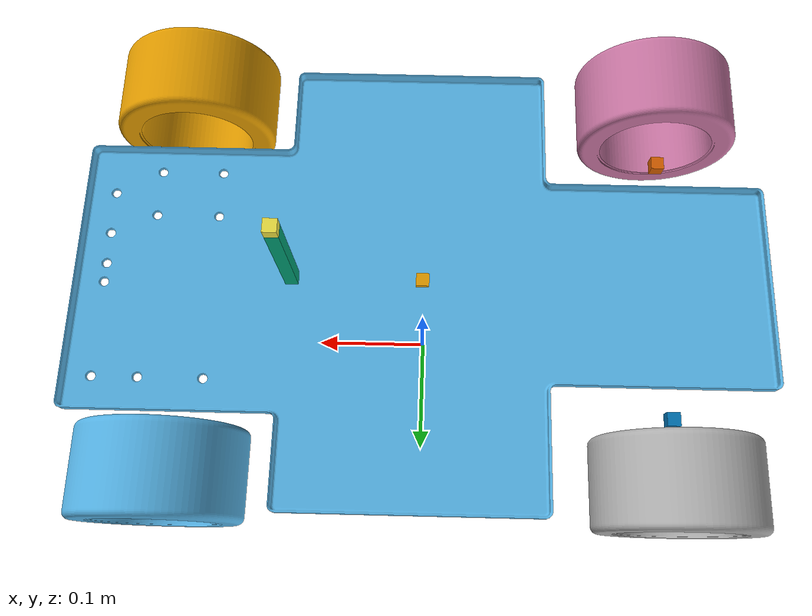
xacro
<?xml version="1.0" ?>
<!-- |    This document was autogenerated by xacro from vehicle_modelV2.urdf.xacro     | -->
<!-- |    EDITING THIS FILE BY HAND IS NOT RECOMMENDED                                 | -->
<robot name="vehicle">
  <!--xacro:include filename="$(find autonomous_vehicle_description)/urdf/autonomous_vehicle.gazebo" /-->
  <link name="vehicle">
    <visual>
      <origin rpy="0 0 0" xyz="0 0 0.2"/>
      <geometry>
        <box size="0.01 0.01 0.01"/>
      </geometry>
    </visual>
  </link>
  <link name="base_link">
    <visual>
      <origin xyz="0 0 0.2"/>
      <geometry>
        <mesh filename="package://autonomous_vehicle_description/meshes/Base.stl"/>
      </geometry>
    </visual>
    <collision>
      <origin xyz="0 0 0.2"/>
      <geometry>
        <box size="0.53 0.14 0.01"/>
      </geometry>
    </collision>
    <inertial>
      <mass value="4"/>
      <inertia ixx="0.163866" ixy="-0.000150" ixz="0.000062" iyy="0.418963" iyz="0.000000" izz="0.582709"/>
    </inertial>
  </link>
  <link name="camera_pole_link">
    <visual>
      <geometry>
        <box size="0.01 0.01 0.1"/>
      </geometry>
    </visual>
    <collision>
      <geometry>
        <box size="0.01 0.01 0.1"/>
      </geometry>
    </collision>
    <inertial>
      <mass value="0.01"/>
      <inertia ixx="0.001" ixy="0.000000" ixz="0.000000" iyy="0.001" iyz="0.000000" izz="0.001"/>
    </inertial>
  </link>
  <joint name="vehicle_camera_pole_joint" type="fixed">
    <parent link="base_link"/>
    <child link="camera_pole_link"/>
    <origin xyz="0.1 0 0.25"/>
  </joint>
  <link name="camera_link">
    <visual>
      <geometry>
        <box size="0.01 0.01 0.01"/>
      </geometry>
    </visual>
    <collision>
      <geometry>
        <box size="0.01 0.01 0.01"/>
      </geometry>
    </collision>
    <inertial>
      <mass value="0.01"/>
      <inertia ixx="0.001" ixy="0.000000" ixz="0.000000" iyy="0.001" iyz="0.000000" izz="0.001"/>
    </inertial>
  </link>
  <joint name="vahicle_camera_pole_joint" type="fixed">
    <parent link="camera_pole_link"/>
    <child link="camera_link"/>
    <origin xyz="0 0 0.055"/>
  </joint>
  <joint name="vehicle_dummy_joint" type="fixed">
    <parent link="vehicle"/>
    <child link="base_link"/>
    <origin xyz="0 0 0"/>
  </joint>
  <link name="left_axle">
    <visual>
      <geometry>
        <box size="0.01 0.01 0.01"/>
      </geometry>
    </visual>
    <contact>
      <geometry>
        <box size="0.01 0.01 0.01"/>
      </geometry>
    </contact>
    <inertial>
      <mass value="0.01"/>
      <inertia ixx="0.001" ixy="0.000000" ixz="0.000000" iyy="0.001" iyz="0.000000" izz="0.001"/>
    </inertial>
  </link>
  <joint name="axle_left_rotate_joint" type="revolute">
    <axis xyz="0 0 1"/>
    <parent link="vehicle"/>
    <child link="left_axle"/>
    <origin xyz="-0.185 0.1025 0.2"/>
    <limit effort="1000.0" lower="-0.35" upper="0.35" velocity="0.5"/>
  </joint>
  <transmission name="axle_left_rotate_trans">
    <type>transmission_interface/SimpleTransmission</type>
    <actuator name="$axle_left_rotate_motor">
      <mechanicalReduction>1</mechanicalReduction>
    </actuator>
    <joint name="axle_left_rotate_joint">
      <hardwareInterface>PositionJointInterface</hardwareInterface>
    </joint>
  </transmission>
  <link name="right_axle">
    <visual>
      <geometry>
        <box size="0.01 0.01 0.01"/>
      </geometry>
    </visual>
    <contact>
      <geometry>
        <box size="0.01 0.01 0.01"/>
      </geometry>
    </contact>
    <inertial>
      <mass value="0.01"/>
      <inertia ixx="0.001" ixy="0.000000" ixz="0.000000" iyy="0.001" iyz="0.000000" izz="0.001"/>
    </inertial>
  </link>
  <joint name="axle_right_rotate_joint" type="revolute">
    <axis xyz="0 0 1"/>
    <parent link="vehicle"/>
    <child link="right_axle"/>
    <origin xyz="-0.185 -0.1025 0.2"/>
    <limit effort="1000.0" lower="-0.35" upper="0.35" velocity="0.5"/>
  </joint>
  <transmission name="axle_right_rotate_trans">
    <type>transmission_interface/SimpleTransmission</type>
    <actuator name="$axle_right_rotate_motor">
      <mechanicalReduction>1</mechanicalReduction>
    </actuator>
    <joint name="axle_right_rotate_joint">
      <hardwareInterface>PositionJointInterface</hardwareInterface>
    </joint>
  </transmission>
  <link name="RightWheel_Front">
    <visual>
      <!--origin xyz="0 0 ${VehicleHeight}"/-->
      <geometry>
        <mesh filename="package://autonomous_vehicle_description/meshes/RightWheel.stl"/>
      </geometry>
    </visual>
    <collision>
      <origin rpy="1.5707963267948966 0 0"/>
      <geometry>
        <cylinder length="0.0670" radius="0.0620"/>
      </geometry>
    </collision>
    <inertial>
      <mass value="1"/>
      <inertia ixx="0.073454" ixy="0.000000" ixz="-0.000000" iyy="0.116212" iyz="0.000000" izz="0.073454"/>
    </inertial>
  </link>
  <link name="LeftWheel_Front">
    <visual>
      <!--origin xyz="0 0 ${VehicleHeight}"/-->
      <geometry>
        <mesh filename="package://autonomous_vehicle_description/meshes/LeftWheel.stl"/>
      </geometry>
    </visual>
    <collision>
      <origin rpy="1.5707963267948966 0 0"/>
      <geometry>
        <cylinder length="0.0670" radius="0.0620"/>
      </geometry>
    </collision>
    <inertial>
      <mass value="1"/>
      <inertia ixx="0.073454" ixy="0.000000" ixz="-0.000000" iyy="0.116212" iyz="0.000000" izz="0.073454"/>
    </inertial>
  </link>
  <link name="RightWheel_Back">
    <visual>
      <!--origin xyz="0 0 ${VehicleHeight}"/-->
      <geometry>
        <mesh filename="package://autonomous_vehicle_description/meshes/RightWheel.stl"/>
      </geometry>
    </visual>
    <collision>
      <origin rpy="1.5707963267948966 0 0"/>
      <geometry>
        <cylinder length="0.0670" radius="0.0620"/>
      </geometry>
    </collision>
    <inertial>
      <mass value="1"/>
      <inertia ixx="0.073454" ixy="0.000000" ixz="-0.000000" iyy="0.116212" iyz="0.000000" izz="0.073454"/>
    </inertial>
  </link>
  <joint name="RightWheel_joint" type="continuous">
    <axis xyz="0 1 0"/>
    <parent link="base_link"/>
    <child link="RightWheel_Back"/>
    <origin xyz="0.185 -0.15 0.2"/>
  </joint>
  <transmission name="RightWheel_motor_trans">
    <type>transmission_interface/SimpleTransmission</type>
    <actuator name="RightWheel_motor_motor">
      <mechanicalReduction>1</mechanicalReduction>
    </actuator>
    <joint name="RightWheel_joint">
      <hardwareInterface>VelocityJointInterface</hardwareInterface>
    </joint>
  </transmission>
  <link name="LeftWheel_Back">
    <visual>
      <!--origin xyz="0 0 ${VehicleHeight}"/-->
      <geometry>
        <mesh filename="package://autonomous_vehicle_description/meshes/LeftWheel.stl"/>
      </geometry>
    </visual>
    <collision>
      <origin rpy="1.5707963267948966 0 0"/>
      <geometry>
        <cylinder length="0.0670" radius="0.0620"/>
      </geometry>
    </collision>
    <inertial>
      <mass value="1"/>
      <inertia ixx="0.073454" ixy="0.000000" ixz="-0.000000" iyy="0.116212" iyz="0.000000" izz="0.073454"/>
    </inertial>
  </link>
  <joint name="LeftWheel_joint" type="continuous">
    <axis xyz="0 1 0"/>
    <parent link="base_link"/>
    <child link="LeftWheel_Back"/>
    <origin xyz="0.185 0.15 0.2"/>
  </joint>
  <transmission name="LeftWheel_motor_trans">
    <type>transmission_interface/SimpleTransmission</type>
    <actuator name="LeftWheel_motor_motor">
      <mechanicalReduction>1</mechanicalReduction>
    </actuator>
    <joint name="LeftWheel_joint">
      <hardwareInterface>VelocityJointInterface</hardwareInterface>
    </joint>
  </transmission>
  <joint name="wheel_right_rotate_joint" type="continuous">
    <axis xyz="0 1 0"/>
    <parent link="right_axle"/>
    <child link="RightWheel_Front"/>
    <origin xyz="0 -0.0475 0"/>
  </joint>
  <joint name="wheel_left_rotate_joint" type="continuous">
    <axis xyz="0 1 0"/>
    <parent link="left_axle"/>
    <child link="LeftWheel_Front"/>
    <origin xyz="0 0.0475 0"/>
  </joint>
  <gazebo>
    <plugin filename="libgazebo_ros_control.so" name="gazebo_ros_control">
      <robotNamespace>/</robotNamespace>
    </plugin>
  </gazebo>
</robot>
